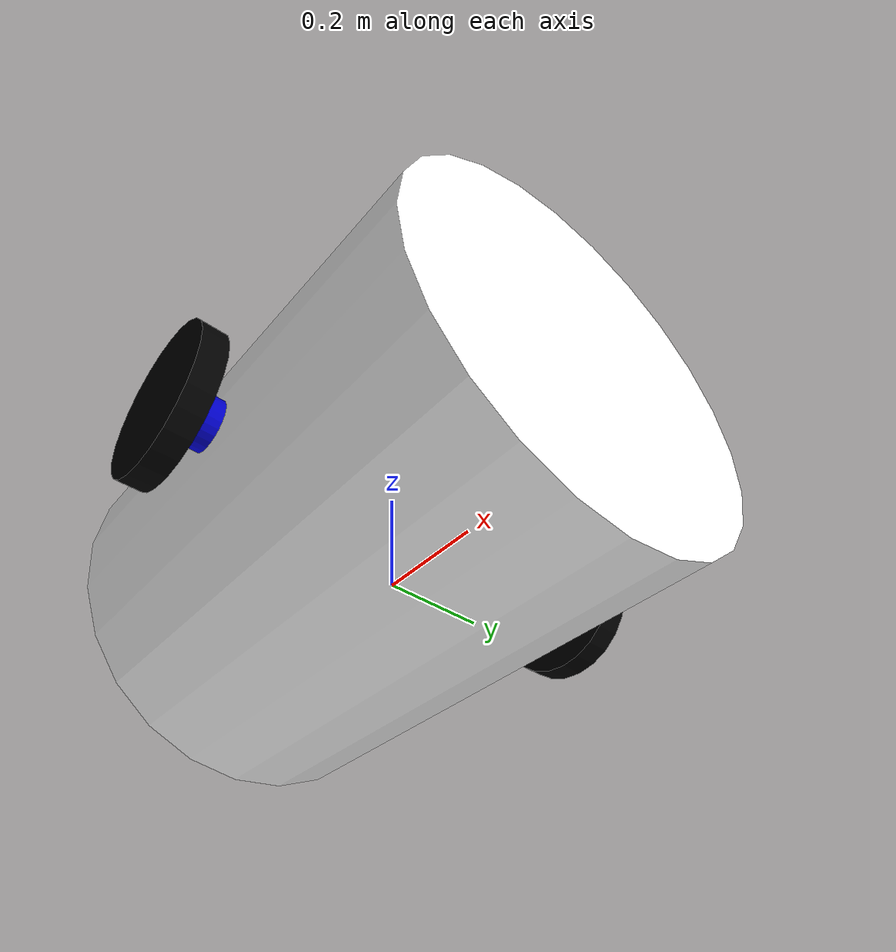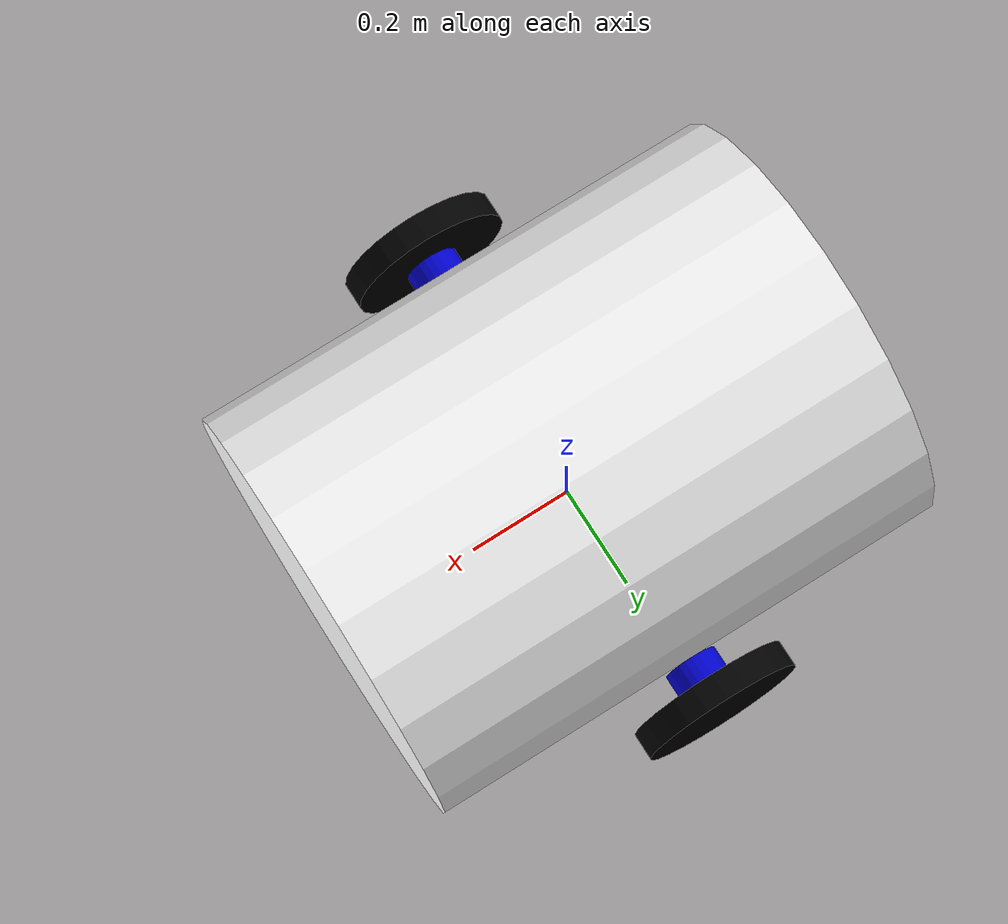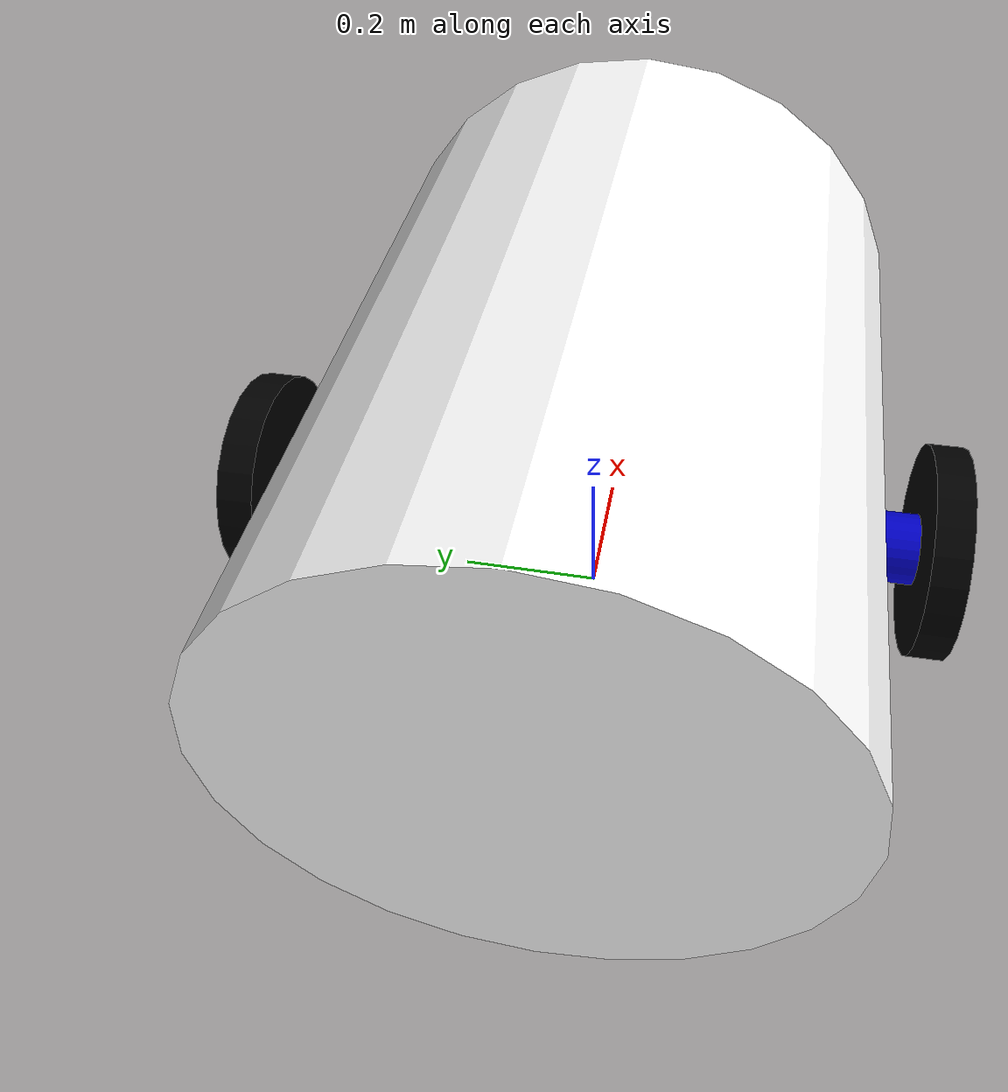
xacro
<?xml version="1.0"?>
<robot name="my_f" xmlns:xacro="http://www.ros.org/wiki/xacro">

  <xacro:property name="width" value="0.4" />       <xacro:property name="length" value="1.0" />      <xacro:property name="wheel_length" value="0.05" />
  <xacro:property name="wheel_radius" value="0.15" /> <material name="blue"><color rgba="0 0 0.8 1"/></material>
  <material name="white"><color rgba="1 1 1 1"/></material>
  <material name="black"><color rgba="0 0 0 1"/></material>
  <material name="red"><color rgba="0.8 0 0 1"/></material>

  <xacro:macro name="cylinder_inertial" params="mass r l">
    <inertial>
      <mass value="${mass}"/>
      <inertia ixx="${mass*(3*r*r + l*l)/12}" ixy="0" ixz="0"
               iyy="${mass*(3*r*r + l*l)/12}" iyz="0"
               izz="${mass*r*r/2}"/>
    </inertial>
  </xacro:macro>

  <link name="base_footprint"/>

  <joint name="base_footprint_to_base_link_joint" type="fixed">
    <parent link="base_footprint"/>
    <child link="base_link"/>
    <origin xyz="0 0 ${wheel_radius}" rpy="0 0 0"/>
  </joint>

  <link name="base_link">
    <visual>
      <geometry>
        <cylinder length="${length}" radius="${width}"/>
      </geometry>
      <origin xyz="0 0 0.05" rpy="0 1.570796 0"/>
      <material name="white"/>
    </visual>
    <collision>
      <geometry>
        <cylinder length="${length}" radius="${width}"/>
      </geometry>
      <origin xyz="0 0 0.05" rpy="0 1.570796 0"/>
    </collision>
    <xacro:cylinder_inertial mass="10" r="${width}" l="${length}"/>
  </link>

  <xacro:macro name="drive_assembly" params="prefix reflect">
    <link name="${prefix}_motor_link">
      <visual>
        <geometry>
          <cylinder length="0.08" radius="0.05"/>
        </geometry>
        <origin xyz="0 0 0" rpy="1.570796 0 0"/>
        <material name="blue"/>
      </visual>
      <collision>
        <geometry>
          <cylinder length="0.08" radius="0.05"/>
        </geometry>
        <origin xyz="0 0 0" rpy="1.570796 0 0"/>
      </collision>
      <xacro:cylinder_inertial mass="0.5" r="0.05" l="0.08"/>
    </link>

    <joint name="${prefix}_motor_joint" type="fixed">
      <parent link="base_link"/>
      <child link="${prefix}_motor_link"/>
      <origin xyz="0 ${reflect * (width + 0.04)} 0" rpy="0 0 0"/>
    </joint>

    <joint name="${prefix}_wheel_joint" type="continuous">
      <axis xyz="0 1 0"/>
      <parent link="${prefix}_motor_link"/>
      <child link="${prefix}_wheel"/>
      <origin xyz="0 ${reflect * 0.04} 0" rpy="0 0 0"/>
    </joint>

    <link name="${prefix}_wheel">
      <visual>
        <geometry>
          <cylinder length="${wheel_length}" radius="${wheel_radius}"/>
        </geometry>
        <origin xyz="0 0 0" rpy="1.570796 0 0"/>
        <material name="black"/>
      </visual>
      <collision>
        <geometry>
          <cylinder length="${wheel_length}" radius="${wheel_radius}"/>
        </geometry>
        <origin xyz="0 0 0" rpy="1.570796 0 0"/>
      </collision>
      <xacro:cylinder_inertial mass="1" r="${wheel_radius}" l="${wheel_length}"/>
    </link>
  </xacro:macro>

  <xacro:drive_assembly prefix="right" reflect="1"/>
  <xacro:drive_assembly prefix="left" reflect="-1"/>

  <link name="caster_wheel">
    <visual>
      <geometry>
        <sphere radius="0.05"/>
      </geometry>
      <material name="black"/>
    </visual>
    <collision>
      <geometry>
        <sphere radius="0.05"/>
      </geometry>
    </collision>
    <inertial>
      <mass value="0.5"/>
      <inertia ixx="0.0005" ixy="0" ixz="0" iyy="0.0005" iyz="0" izz="0.0005"/>
    </inertial>
  </link>

  <joint name="caster_wheel_joint" type="fixed">
    <parent link="base_link"/>
    <child link="caster_wheel"/>
    <origin xyz="0.4 0 -0.1" rpy="0 0 0"/>
  </joint>

  <gazebo reference="caster_wheel">
    <mu1>0.001</mu1>
    <mu2>0.001</mu2>
  </gazebo>

  <xacro:macro name="ir_sensor" params="prefix xyz">
    <link name="ir_${prefix}_link">
      <visual>
        <geometry>
          <box size="0.02 0.02 0.02"/>
        </geometry>
        <material name="red"/>
      </visual>
      <xacro:cylinder_inertial mass="0.05" r="0.005" l="0.02"/>
    </link>

    <joint name="ir_${prefix}_joint" type="fixed">
      <parent link="base_link"/>
      <child link="ir_${prefix}_link"/>
      <origin xyz="${xyz}" rpy="0 1.570796 0"/> </joint>

    <gazebo reference="ir_${prefix}_link">
      <sensor type="ray" name="ir_${prefix}_sensor">
        <pose>0 0 0 0 0 0</pose>
        <visualize>true</visualize>
        <update_rate>50</update_rate>
        <ray>
          <scan>
            <horizontal>
              <samples>1</samples>
              <resolution>1</resolution>
              <min_angle>0</min_angle>
              <max_angle>0</max_angle>
            </horizontal>
          </scan>
          <range>
            <min>0.005</min>
            <max>0.15</max>
            <resolution>0.001</resolution>
          </range>
        </ray>
        <plugin name="ir_${prefix}_plugin" filename="libgazebo_ros_ray_sensor.so">
          <ros>
            <remapping>~/out:=/ir_sensor/${prefix}</remapping>
          </ros>
          <output_type>sensor_msgs/Range</output_type>
          <frame_name>ir_${prefix}_link</frame_name>
        </plugin>
      </sensor>
    </gazebo>
  </xacro:macro>

  <xacro:ir_sensor prefix="left"   xyz="0.48  0.06 -0.08"/>
  <xacro:ir_sensor prefix="center" xyz="0.48  0.00 -0.08"/>
  <xacro:ir_sensor prefix="right"  xyz="0.48 -0.06 -0.08"/>

  <gazebo>
    <plugin name="differential_drive_controller" filename="libgazebo_ros_diff_drive.so">
      <update_rate>50</update_rate>

      <left_joint>left_wheel_joint</left_joint>
      <right_joint>right_wheel_joint</right_joint>

      <wheel_separation>${(width + 0.08) * 2}</wheel_separation>
      <wheel_diameter>${wheel_radius * 2}</wheel_diameter>
      <max_wheel_torque>30</max_wheel_torque>
      <max_wheel_acceleration>2.0</max_wheel_acceleration>

      <command_topic>cmd_vel</command_topic>
      <odometry_topic>odom</odometry_topic>
      <odometry_frame>odom</odometry_frame>
      <robot_base_frame>base_footprint</robot_base_frame>

      <publish_odom>true</publish_odom>
      <publish_odom_tf>true</publish_odom_tf>
      <publish_wheel_tf>true</publish_wheel_tf>
    </plugin>
  </gazebo>

</robot>
